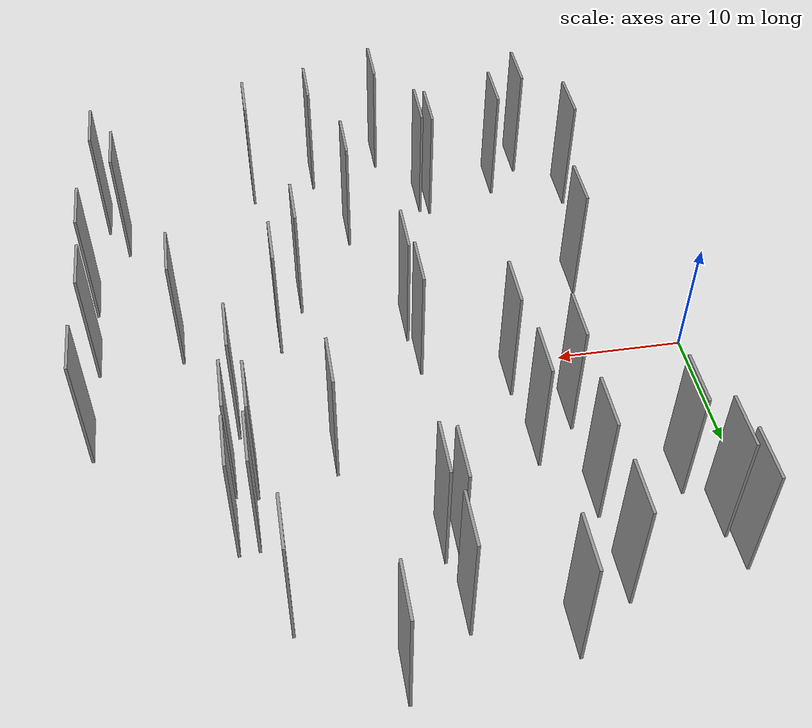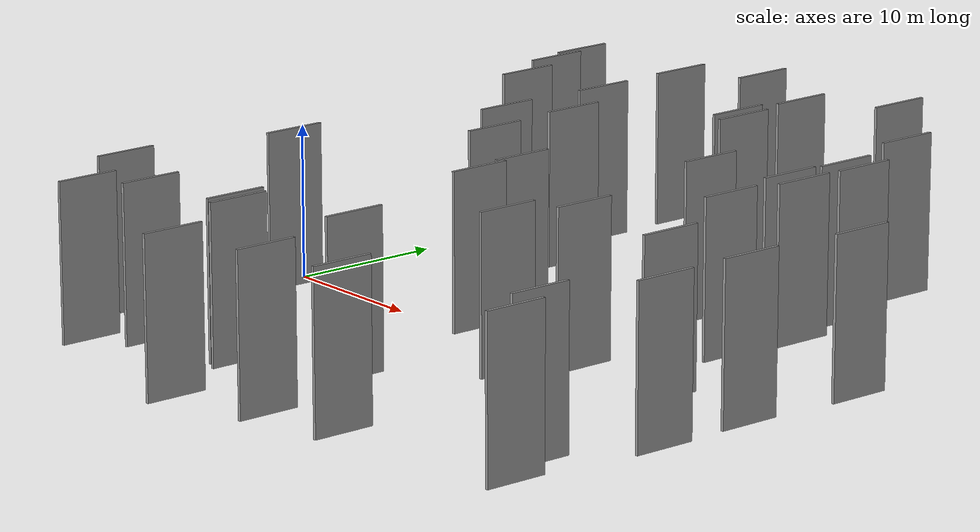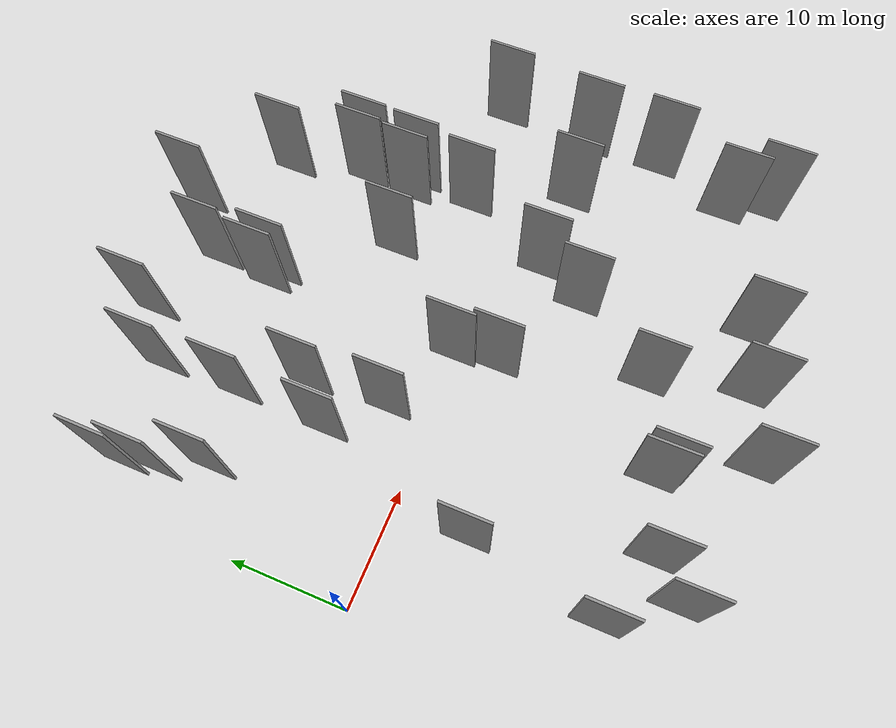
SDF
<sdf version="1.6">
 <world name="default">
  <scene>
   <sky><clouds><speed>12</speed></clouds></sky>
   <ambient>0.4 0.4 0.4 1</ambient>
   <background>0.7 0.7 0.7 1</background>
   <shadows>1</shadows>
  </scene>
  <gravity>0 0 -9.8066</gravity>
  <magnetic_field>6e-06 2.3e-05 -4.2e-05</magnetic_field>
  <physics default="0" name="default_physics" type="ode">
   <ode>
    <solver>
     <type>quick</type>
     <iters>10</iters>
     <sor>1.0</sor>
     <use_dynamic_moi_rescaling>0</use_dynamic_moi_rescaling>
    </solver>
    <constraints>
     <cfm>0</cfm>
     <erp>0.2</erp>
     <contact_max_correcting_vel>100</contact_max_correcting_vel>
     <contact_surface_layer>0.001</contact_surface_layer>
    </constraints>
   </ode>
   <max_step_size>0.004</max_step_size>
   <real_time_factor>1</real_time_factor>
   <real_time_update_rate>250</real_time_update_rate>
  </physics>
  <light name="sun" type="directional">
   <pose>0 0 10 0 0 0</pose>
   <diffuse>0.8 0.8 0.8 1</diffuse>
   <specular>0.2 0.2 0.2 1</specular>
   <attenuation>
    <range>1000</range>
    <constant>0.9</constant>
    <linear>0.01</linear>
    <quadratic>0.001</quadratic>
   </attenuation>
   <direction>-0.5 0.1 -0.9</direction>
  </light>
  <model name="grey_wall_1">
   <static>1</static>
   <pose>43.2385 -16.6148 2.5 0.000000 0.000000 1.570796</pose>
   <link name="link">
    <pose>0 0 5.00 0 0 0</pose>
    <collision name="collision"><geometry><box><size>4.00 0.2 10.00</size></box></geometry></collision>
    <visual name="visual">
     <cast_shadows>0</cast_shadows>
     <geometry><box><size>4.00 0.2 10.00</size></box></geometry>
     <material>
      <script>
       <uri>model://grey_wall/materials/scripts</uri>
       <uri>model://grey_wall/materials/textures</uri>
       <name>vrc/grey_wall</name>
      </script>
     </material>
    </visual>
   </link>
  </model>
  <model name="grey_wall_2">
   <static>1</static>
   <pose>21.4742 0.1918 2.5 0.000000 0.000000 1.570796</pose>
   <link name="link">
    <pose>0 0 5.00 0 0 0</pose>
    <collision name="collision"><geometry><box><size>4.00 0.2 10.00</size></box></geometry></collision>
    <visual name="visual">
     <cast_shadows>0</cast_shadows>
     <geometry><box><size>4.00 0.2 10.00</size></box></geometry>
     <material>
      <script>
       <uri>model://grey_wall/materials/scripts</uri>
       <uri>model://grey_wall/materials/textures</uri>
       <name>vrc/grey_wall</name>
      </script>
     </material>
    </visual>
   </link>
  </model>
  <model name="grey_wall_3">
   <static>1</static>
   <pose>11.6124 7.1430 2.5 0.000000 0.000000 1.570796</pose>
   <link name="link">
    <pose>0 0 5.00 0 0 0</pose>
    <collision name="collision"><geometry><box><size>4.00 0.2 10.00</size></box></geometry></collision>
    <visual name="visual">
     <cast_shadows>0</cast_shadows>
     <geometry><box><size>4.00 0.2 10.00</size></box></geometry>
     <material>
      <script>
       <uri>model://grey_wall/materials/scripts</uri>
       <uri>model://grey_wall/materials/textures</uri>
       <name>vrc/grey_wall</name>
      </script>
     </material>
    </visual>
   </link>
  </model>
  <model name="grey_wall_4">
   <static>1</static>
   <pose>3.8051 17.7990 2.5 0.000000 0.000000 1.570796</pose>
   <link name="link">
    <pose>0 0 5.00 0 0 0</pose>
    <collision name="collision"><geometry><box><size>4.00 0.2 10.00</size></box></geometry></collision>
    <visual name="visual">
     <cast_shadows>0</cast_shadows>
     <geometry><box><size>4.00 0.2 10.00</size></box></geometry>
     <material>
      <script>
       <uri>model://grey_wall/materials/scripts</uri>
       <uri>model://grey_wall/materials/textures</uri>
       <name>vrc/grey_wall</name>
      </script>
     </material>
    </visual>
   </link>
  </model>
  <model name="grey_wall_5">
   <static>1</static>
   <pose>17.5245 -18.0803 2.5 0.000000 0.000000 1.570796</pose>
   <link name="link">
    <pose>0 0 5.00 0 0 0</pose>
    <collision name="collision"><geometry><box><size>4.00 0.2 10.00</size></box></geometry></collision>
    <visual name="visual">
     <cast_shadows>0</cast_shadows>
     <geometry><box><size>4.00 0.2 10.00</size></box></geometry>
     <material>
      <script>
       <uri>model://grey_wall/materials/scripts</uri>
       <uri>model://grey_wall/materials/textures</uri>
       <name>vrc/grey_wall</name>
      </script>
     </material>
    </visual>
   </link>
  </model>
  <model name="grey_wall_6">
   <static>1</static>
   <pose>14.7290 9.9586 2.5 0.000000 0.000000 1.570796</pose>
   <link name="link">
    <pose>0 0 5.00 0 0 0</pose>
    <collision name="collision"><geometry><box><size>4.00 0.2 10.00</size></box></geometry></collision>
    <visual name="visual">
     <cast_shadows>0</cast_shadows>
     <geometry><box><size>4.00 0.2 10.00</size></box></geometry>
     <material>
      <script>
       <uri>model://grey_wall/materials/scripts</uri>
       <uri>model://grey_wall/materials/textures</uri>
       <name>vrc/grey_wall</name>
      </script>
     </material>
    </visual>
   </link>
  </model>
  <model name="grey_wall_7">
   <static>1</static>
   <pose>22.2468 22.2439 2.5 0.000000 0.000000 1.570796</pose>
   <link name="link">
    <pose>0 0 5.00 0 0 0</pose>
    <collision name="collision"><geometry><box><size>4.00 0.2 10.00</size></box></geometry></collision>
    <visual name="visual">
     <cast_shadows>0</cast_shadows>
     <geometry><box><size>4.00 0.2 10.00</size></box></geometry>
     <material>
      <script>
       <uri>model://grey_wall/materials/scripts</uri>
       <uri>model://grey_wall/materials/textures</uri>
       <name>vrc/grey_wall</name>
      </script>
     </material>
    </visual>
   </link>
  </model>
  <model name="grey_wall_8">
   <static>1</static>
   <pose>15.1997 3.2499 2.5 0.000000 0.000000 1.570796</pose>
   <link name="link">
    <pose>0 0 5.00 0 0 0</pose>
    <collision name="collision"><geometry><box><size>4.00 0.2 10.00</size></box></geometry></collision>
    <visual name="visual">
     <cast_shadows>0</cast_shadows>
     <geometry><box><size>4.00 0.2 10.00</size></box></geometry>
     <material>
      <script>
       <uri>model://grey_wall/materials/scripts</uri>
       <uri>model://grey_wall/materials/textures</uri>
       <name>vrc/grey_wall</name>
      </script>
     </material>
    </visual>
   </link>
  </model>
  <model name="grey_wall_9">
   <static>1</static>
   <pose>15.8078 24.9222 2.5 0.000000 0.000000 1.570796</pose>
   <link name="link">
    <pose>0 0 5.00 0 0 0</pose>
    <collision name="collision"><geometry><box><size>4.00 0.2 10.00</size></box></geometry></collision>
    <visual name="visual">
     <cast_shadows>0</cast_shadows>
     <geometry><box><size>4.00 0.2 10.00</size></box></geometry>
     <material>
      <script>
       <uri>model://grey_wall/materials/scripts</uri>
       <uri>model://grey_wall/materials/textures</uri>
       <name>vrc/grey_wall</name>
      </script>
     </material>
    </visual>
   </link>
  </model>
  <model name="grey_wall_10">
   <static>1</static>
   <pose>35.5209 4.2593 2.5 0.000000 0.000000 1.570796</pose>
   <link name="link">
    <pose>0 0 5.00 0 0 0</pose>
    <collision name="collision"><geometry><box><size>4.00 0.2 10.00</size></box></geometry></collision>
    <visual name="visual">
     <cast_shadows>0</cast_shadows>
     <geometry><box><size>4.00 0.2 10.00</size></box></geometry>
     <material>
      <script>
       <uri>model://grey_wall/materials/scripts</uri>
       <uri>model://grey_wall/materials/textures</uri>
       <name>vrc/grey_wall</name>
      </script>
     </material>
    </visual>
   </link>
  </model>
  <model name="grey_wall_11">
   <static>1</static>
   <pose>21.7479 17.3656 2.5 0.000000 0.000000 1.570796</pose>
   <link name="link">
    <pose>0 0 5.00 0 0 0</pose>
    <collision name="collision"><geometry><box><size>4.00 0.2 10.00</size></box></geometry></collision>
    <visual name="visual">
     <cast_shadows>0</cast_shadows>
     <geometry><box><size>4.00 0.2 10.00</size></box></geometry>
     <material>
      <script>
       <uri>model://grey_wall/materials/scripts</uri>
       <uri>model://grey_wall/materials/textures</uri>
       <name>vrc/grey_wall</name>
      </script>
     </material>
    </visual>
   </link>
  </model>
  <model name="grey_wall_12">
   <static>1</static>
   <pose>29.7383 -7.7448 2.5 0.000000 0.000000 1.570796</pose>
   <link name="link">
    <pose>0 0 5.00 0 0 0</pose>
    <collision name="collision"><geometry><box><size>4.00 0.2 10.00</size></box></geometry></collision>
    <visual name="visual">
     <cast_shadows>0</cast_shadows>
     <geometry><box><size>4.00 0.2 10.00</size></box></geometry>
     <material>
      <script>
       <uri>model://grey_wall/materials/scripts</uri>
       <uri>model://grey_wall/materials/textures</uri>
       <name>vrc/grey_wall</name>
      </script>
     </material>
    </visual>
   </link>
  </model>
  <model name="grey_wall_13">
   <static>1</static>
   <pose>5.5190 13.9306 2.5 0.000000 0.000000 1.570796</pose>
   <link name="link">
    <pose>0 0 5.00 0 0 0</pose>
    <collision name="collision"><geometry><box><size>4.00 0.2 10.00</size></box></geometry></collision>
    <visual name="visual">
     <cast_shadows>0</cast_shadows>
     <geometry><box><size>4.00 0.2 10.00</size></box></geometry>
     <material>
      <script>
       <uri>model://grey_wall/materials/scripts</uri>
       <uri>model://grey_wall/materials/textures</uri>
       <name>vrc/grey_wall</name>
      </script>
     </material>
    </visual>
   </link>
  </model>
  <model name="grey_wall_14">
   <static>1</static>
   <pose>45.9590 4.7198 2.5 0.000000 0.000000 1.570796</pose>
   <link name="link">
    <pose>0 0 5.00 0 0 0</pose>
    <collision name="collision"><geometry><box><size>4.00 0.2 10.00</size></box></geometry></collision>
    <visual name="visual">
     <cast_shadows>0</cast_shadows>
     <geometry><box><size>4.00 0.2 10.00</size></box></geometry>
     <material>
      <script>
       <uri>model://grey_wall/materials/scripts</uri>
       <uri>model://grey_wall/materials/textures</uri>
       <name>vrc/grey_wall</name>
      </script>
     </material>
    </visual>
   </link>
  </model>
  <model name="grey_wall_15">
   <static>1</static>
   <pose>11.7948 14.9280 2.5 0.000000 0.000000 1.570796</pose>
   <link name="link">
    <pose>0 0 5.00 0 0 0</pose>
    <collision name="collision"><geometry><box><size>4.00 0.2 10.00</size></box></geometry></collision>
    <visual name="visual">
     <cast_shadows>0</cast_shadows>
     <geometry><box><size>4.00 0.2 10.00</size></box></geometry>
     <material>
      <script>
       <uri>model://grey_wall/materials/scripts</uri>
       <uri>model://grey_wall/materials/textures</uri>
       <name>vrc/grey_wall</name>
      </script>
     </material>
    </visual>
   </link>
  </model>
  <model name="grey_wall_16">
   <static>1</static>
   <pose>45.7403 -9.8213 2.5 0.000000 0.000000 1.570796</pose>
   <link name="link">
    <pose>0 0 5.00 0 0 0</pose>
    <collision name="collision"><geometry><box><size>4.00 0.2 10.00</size></box></geometry></collision>
    <visual name="visual">
     <cast_shadows>0</cast_shadows>
     <geometry><box><size>4.00 0.2 10.00</size></box></geometry>
     <material>
      <script>
       <uri>model://grey_wall/materials/scripts</uri>
       <uri>model://grey_wall/materials/textures</uri>
       <name>vrc/grey_wall</name>
      </script>
     </material>
    </visual>
   </link>
  </model>
  <model name="grey_wall_17">
   <static>1</static>
   <pose>34.8462 14.0735 2.5 0.000000 0.000000 1.570796</pose>
   <link name="link">
    <pose>0 0 5.00 0 0 0</pose>
    <collision name="collision"><geometry><box><size>4.00 0.2 10.00</size></box></geometry></collision>
    <visual name="visual">
     <cast_shadows>0</cast_shadows>
     <geometry><box><size>4.00 0.2 10.00</size></box></geometry>
     <material>
      <script>
       <uri>model://grey_wall/materials/scripts</uri>
       <uri>model://grey_wall/materials/textures</uri>
       <name>vrc/grey_wall</name>
      </script>
     </material>
    </visual>
   </link>
  </model>
  <model name="grey_wall_18">
   <static>1</static>
   <pose>34.6145 9.7718 2.5 0.000000 0.000000 1.570796</pose>
   <link name="link">
    <pose>0 0 5.00 0 0 0</pose>
    <collision name="collision"><geometry><box><size>4.00 0.2 10.00</size></box></geometry></collision>
    <visual name="visual">
     <cast_shadows>0</cast_shadows>
     <geometry><box><size>4.00 0.2 10.00</size></box></geometry>
     <material>
      <script>
       <uri>model://grey_wall/materials/scripts</uri>
       <uri>model://grey_wall/materials/textures</uri>
       <name>vrc/grey_wall</name>
      </script>
     </material>
    </visual>
   </link>
  </model>
  <model name="grey_wall_19">
   <static>1</static>
   <pose>45.5823 -3.3655 2.5 0.000000 0.000000 1.570796</pose>
   <link name="link">
    <pose>0 0 5.00 0 0 0</pose>
    <collision name="collision"><geometry><box><size>4.00 0.2 10.00</size></box></geometry></collision>
    <visual name="visual">
     <cast_shadows>0</cast_shadows>
     <geometry><box><size>4.00 0.2 10.00</size></box></geometry>
     <material>
      <script>
       <uri>model://grey_wall/materials/scripts</uri>
       <uri>model://grey_wall/materials/textures</uri>
       <name>vrc/grey_wall</name>
      </script>
     </material>
    </visual>
   </link>
  </model>
  <model name="grey_wall_20">
   <static>1</static>
   <pose>33.2724 20.6800 2.5 0.000000 0.000000 1.570796</pose>
   <link name="link">
    <pose>0 0 5.00 0 0 0</pose>
    <collision name="collision"><geometry><box><size>4.00 0.2 10.00</size></box></geometry></collision>
    <visual name="visual">
     <cast_shadows>0</cast_shadows>
     <geometry><box><size>4.00 0.2 10.00</size></box></geometry>
     <material>
      <script>
       <uri>model://grey_wall/materials/scripts</uri>
       <uri>model://grey_wall/materials/textures</uri>
       <name>vrc/grey_wall</name>
      </script>
     </material>
    </visual>
   </link>
  </model>
  <model name="grey_wall_21">
   <static>1</static>
   <pose>5.7601 -17.5686 2.5 0.000000 0.000000 1.570796</pose>
   <link name="link">
    <pose>0 0 5.00 0 0 0</pose>
    <collision name="collision"><geometry><box><size>4.00 0.2 10.00</size></box></geometry></collision>
    <visual name="visual">
     <cast_shadows>0</cast_shadows>
     <geometry><box><size>4.00 0.2 10.00</size></box></geometry>
     <material>
      <script>
       <uri>model://grey_wall/materials/scripts</uri>
       <uri>model://grey_wall/materials/textures</uri>
       <name>vrc/grey_wall</name>
      </script>
     </material>
    </visual>
   </link>
  </model>
  <model name="grey_wall_22">
   <static>1</static>
   <pose>3.2390 20.4464 2.5 0.000000 0.000000 1.570796</pose>
   <link name="link">
    <pose>0 0 5.00 0 0 0</pose>
    <collision name="collision"><geometry><box><size>4.00 0.2 10.00</size></box></geometry></collision>
    <visual name="visual">
     <cast_shadows>0</cast_shadows>
     <geometry><box><size>4.00 0.2 10.00</size></box></geometry>
     <material>
      <script>
       <uri>model://grey_wall/materials/scripts</uri>
       <uri>model://grey_wall/materials/textures</uri>
       <name>vrc/grey_wall</name>
      </script>
     </material>
    </visual>
   </link>
  </model>
  <model name="grey_wall_23">
   <static>1</static>
   <pose>27.1002 -22.9911 2.5 0.000000 0.000000 1.570796</pose>
   <link name="link">
    <pose>0 0 5.00 0 0 0</pose>
    <collision name="collision"><geometry><box><size>4.00 0.2 10.00</size></box></geometry></collision>
    <visual name="visual">
     <cast_shadows>0</cast_shadows>
     <geometry><box><size>4.00 0.2 10.00</size></box></geometry>
     <material>
      <script>
       <uri>model://grey_wall/materials/scripts</uri>
       <uri>model://grey_wall/materials/textures</uri>
       <name>vrc/grey_wall</name>
      </script>
     </material>
    </visual>
   </link>
  </model>
  <model name="grey_wall_24">
   <static>1</static>
   <pose>21.2344 -25.1447 2.5 0.000000 0.000000 1.570796</pose>
   <link name="link">
    <pose>0 0 5.00 0 0 0</pose>
    <collision name="collision"><geometry><box><size>4.00 0.2 10.00</size></box></geometry></collision>
    <visual name="visual">
     <cast_shadows>0</cast_shadows>
     <geometry><box><size>4.00 0.2 10.00</size></box></geometry>
     <material>
      <script>
       <uri>model://grey_wall/materials/scripts</uri>
       <uri>model://grey_wall/materials/textures</uri>
       <name>vrc/grey_wall</name>
      </script>
     </material>
    </visual>
   </link>
  </model>
  <model name="grey_wall_25">
   <static>1</static>
   <pose>11.6593 -19.9149 2.5 0.000000 0.000000 1.570796</pose>
   <link name="link">
    <pose>0 0 5.00 0 0 0</pose>
    <collision name="collision"><geometry><box><size>4.00 0.2 10.00</size></box></geometry></collision>
    <visual name="visual">
     <cast_shadows>0</cast_shadows>
     <geometry><box><size>4.00 0.2 10.00</size></box></geometry>
     <material>
      <script>
       <uri>model://grey_wall/materials/scripts</uri>
       <uri>model://grey_wall/materials/textures</uri>
       <name>vrc/grey_wall</name>
      </script>
     </material>
    </visual>
   </link>
  </model>
  <model name="grey_wall_26">
   <static>1</static>
   <pose>22.8054 16.8679 2.5 0.000000 0.000000 1.570796</pose>
   <link name="link">
    <pose>0 0 5.00 0 0 0</pose>
    <collision name="collision"><geometry><box><size>4.00 0.2 10.00</size></box></geometry></collision>
    <visual name="visual">
     <cast_shadows>0</cast_shadows>
     <geometry><box><size>4.00 0.2 10.00</size></box></geometry>
     <material>
      <script>
       <uri>model://grey_wall/materials/scripts</uri>
       <uri>model://grey_wall/materials/textures</uri>
       <name>vrc/grey_wall</name>
      </script>
     </material>
    </visual>
   </link>
  </model>
  <model name="grey_wall_27">
   <static>1</static>
   <pose>7.8023 -6.5216 2.5 0.000000 0.000000 1.570796</pose>
   <link name="link">
    <pose>0 0 5.00 0 0 0</pose>
    <collision name="collision"><geometry><box><size>4.00 0.2 10.00</size></box></geometry></collision>
    <visual name="visual">
     <cast_shadows>0</cast_shadows>
     <geometry><box><size>4.00 0.2 10.00</size></box></geometry>
     <material>
      <script>
       <uri>model://grey_wall/materials/scripts</uri>
       <uri>model://grey_wall/materials/textures</uri>
       <name>vrc/grey_wall</name>
      </script>
     </material>
    </visual>
   </link>
  </model>
  <model name="grey_wall_28">
   <static>1</static>
   <pose>39.2537 -3.7173 2.5 0.000000 0.000000 1.570796</pose>
   <link name="link">
    <pose>0 0 5.00 0 0 0</pose>
    <collision name="collision"><geometry><box><size>4.00 0.2 10.00</size></box></geometry></collision>
    <visual name="visual">
     <cast_shadows>0</cast_shadows>
     <geometry><box><size>4.00 0.2 10.00</size></box></geometry>
     <material>
      <script>
       <uri>model://grey_wall/materials/scripts</uri>
       <uri>model://grey_wall/materials/textures</uri>
       <name>vrc/grey_wall</name>
      </script>
     </material>
    </visual>
   </link>
  </model>
  <model name="grey_wall_29">
   <static>1</static>
   <pose>36.1543 9.4478 2.5 0.000000 0.000000 1.570796</pose>
   <link name="link">
    <pose>0 0 5.00 0 0 0</pose>
    <collision name="collision"><geometry><box><size>4.00 0.2 10.00</size></box></geometry></collision>
    <visual name="visual">
     <cast_shadows>0</cast_shadows>
     <geometry><box><size>4.00 0.2 10.00</size></box></geometry>
     <material>
      <script>
       <uri>model://grey_wall/materials/scripts</uri>
       <uri>model://grey_wall/materials/textures</uri>
       <name>vrc/grey_wall</name>
      </script>
     </material>
    </visual>
   </link>
  </model>
  <model name="grey_wall_30">
   <static>1</static>
   <pose>9.0304 -22.5887 2.5 0.000000 0.000000 1.570796</pose>
   <link name="link">
    <pose>0 0 5.00 0 0 0</pose>
    <collision name="collision"><geometry><box><size>4.00 0.2 10.00</size></box></geometry></collision>
    <visual name="visual">
     <cast_shadows>0</cast_shadows>
     <geometry><box><size>4.00 0.2 10.00</size></box></geometry>
     <material>
      <script>
       <uri>model://grey_wall/materials/scripts</uri>
       <uri>model://grey_wall/materials/textures</uri>
       <name>vrc/grey_wall</name>
      </script>
     </material>
    </visual>
   </link>
  </model>
  <model name="grey_wall_31">
   <static>1</static>
   <pose>44.8850 -19.6930 2.5 0.000000 0.000000 1.570796</pose>
   <link name="link">
    <pose>0 0 5.00 0 0 0</pose>
    <collision name="collision"><geometry><box><size>4.00 0.2 10.00</size></box></geometry></collision>
    <visual name="visual">
     <cast_shadows>0</cast_shadows>
     <geometry><box><size>4.00 0.2 10.00</size></box></geometry>
     <material>
      <script>
       <uri>model://grey_wall/materials/scripts</uri>
       <uri>model://grey_wall/materials/textures</uri>
       <name>vrc/grey_wall</name>
      </script>
     </material>
    </visual>
   </link>
  </model>
  <model name="grey_wall_32">
   <static>1</static>
   <pose>18.3142 -18.4697 2.5 0.000000 0.000000 1.570796</pose>
   <link name="link">
    <pose>0 0 5.00 0 0 0</pose>
    <collision name="collision"><geometry><box><size>4.00 0.2 10.00</size></box></geometry></collision>
    <visual name="visual">
     <cast_shadows>0</cast_shadows>
     <geometry><box><size>4.00 0.2 10.00</size></box></geometry>
     <material>
      <script>
       <uri>model://grey_wall/materials/scripts</uri>
       <uri>model://grey_wall/materials/textures</uri>
       <name>vrc/grey_wall</name>
      </script>
     </material>
    </visual>
   </link>
  </model>
  <model name="grey_wall_33">
   <static>1</static>
   <pose>36.2570 14.2014 2.5 0.000000 0.000000 1.570796</pose>
   <link name="link">
    <pose>0 0 5.00 0 0 0</pose>
    <collision name="collision"><geometry><box><size>4.00 0.2 10.00</size></box></geometry></collision>
    <visual name="visual">
     <cast_shadows>0</cast_shadows>
     <geometry><box><size>4.00 0.2 10.00</size></box></geometry>
     <material>
      <script>
       <uri>model://grey_wall/materials/scripts</uri>
       <uri>model://grey_wall/materials/textures</uri>
       <name>vrc/grey_wall</name>
      </script>
     </material>
    </visual>
   </link>
  </model>
  <model name="grey_wall_34">
   <static>1</static>
   <pose>11.6358 21.6472 2.5 0.000000 0.000000 1.570796</pose>
   <link name="link">
    <pose>0 0 5.00 0 0 0</pose>
    <collision name="collision"><geometry><box><size>4.00 0.2 10.00</size></box></geometry></collision>
    <visual name="visual">
     <cast_shadows>0</cast_shadows>
     <geometry><box><size>4.00 0.2 10.00</size></box></geometry>
     <material>
      <script>
       <uri>model://grey_wall/materials/scripts</uri>
       <uri>model://grey_wall/materials/textures</uri>
       <name>vrc/grey_wall</name>
      </script>
     </material>
    </visual>
   </link>
  </model>
  <model name="grey_wall_35">
   <static>1</static>
   <pose>21.9230 -3.4317 2.5 0.000000 0.000000 1.570796</pose>
   <link name="link">
    <pose>0 0 5.00 0 0 0</pose>
    <collision name="collision"><geometry><box><size>4.00 0.2 10.00</size></box></geometry></collision>
    <visual name="visual">
     <cast_shadows>0</cast_shadows>
     <geometry><box><size>4.00 0.2 10.00</size></box></geometry>
     <material>
      <script>
       <uri>model://grey_wall/materials/scripts</uri>
       <uri>model://grey_wall/materials/textures</uri>
       <name>vrc/grey_wall</name>
      </script>
     </material>
    </visual>
   </link>
  </model>
  <model name="grey_wall_36">
   <static>1</static>
   <pose>32.4064 -21.7480 2.5 0.000000 0.000000 1.570796</pose>
   <link name="link">
    <pose>0 0 5.00 0 0 0</pose>
    <collision name="collision"><geometry><box><size>4.00 0.2 10.00</size></box></geometry></collision>
    <visual name="visual">
     <cast_shadows>0</cast_shadows>
     <geometry><box><size>4.00 0.2 10.00</size></box></geometry>
     <material>
      <script>
       <uri>model://grey_wall/materials/scripts</uri>
       <uri>model://grey_wall/materials/textures</uri>
       <name>vrc/grey_wall</name>
      </script>
     </material>
    </visual>
   </link>
  </model>
  <model name="grey_wall_37">
   <static>1</static>
   <pose>26.8143 26.3246 2.5 0.000000 0.000000 1.570796</pose>
   <link name="link">
    <pose>0 0 5.00 0 0 0</pose>
    <collision name="collision"><geometry><box><size>4.00 0.2 10.00</size></box></geometry></collision>
    <visual name="visual">
     <cast_shadows>0</cast_shadows>
     <geometry><box><size>4.00 0.2 10.00</size></box></geometry>
     <material>
      <script>
       <uri>model://grey_wall/materials/scripts</uri>
       <uri>model://grey_wall/materials/textures</uri>
       <name>vrc/grey_wall</name>
      </script>
     </material>
    </visual>
   </link>
  </model>
  <model name="grey_wall_38">
   <static>1</static>
   <pose>28.9399 8.6210 2.5 0.000000 0.000000 1.570796</pose>
   <link name="link">
    <pose>0 0 5.00 0 0 0</pose>
    <collision name="collision"><geometry><box><size>4.00 0.2 10.00</size></box></geometry></collision>
    <visual name="visual">
     <cast_shadows>0</cast_shadows>
     <geometry><box><size>4.00 0.2 10.00</size></box></geometry>
     <material>
      <script>
       <uri>model://grey_wall/materials/scripts</uri>
       <uri>model://grey_wall/materials/textures</uri>
       <name>vrc/grey_wall</name>
      </script>
     </material>
    </visual>
   </link>
  </model>
  <model name="grey_wall_39">
   <static>1</static>
   <pose>31.7501 -3.6896 2.5 0.000000 0.000000 1.570796</pose>
   <link name="link">
    <pose>0 0 5.00 0 0 0</pose>
    <collision name="collision"><geometry><box><size>4.00 0.2 10.00</size></box></geometry></collision>
    <visual name="visual">
     <cast_shadows>0</cast_shadows>
     <geometry><box><size>4.00 0.2 10.00</size></box></geometry>
     <material>
      <script>
       <uri>model://grey_wall/materials/scripts</uri>
       <uri>model://grey_wall/materials/textures</uri>
       <name>vrc/grey_wall</name>
      </script>
     </material>
    </visual>
   </link>
  </model>
  <model name="grey_wall_40">
   <static>1</static>
   <pose>24.9299 -15.1212 2.5 0.000000 0.000000 1.570796</pose>
   <link name="link">
    <pose>0 0 5.00 0 0 0</pose>
    <collision name="collision"><geometry><box><size>4.00 0.2 10.00</size></box></geometry></collision>
    <visual name="visual">
     <cast_shadows>0</cast_shadows>
     <geometry><box><size>4.00 0.2 10.00</size></box></geometry>
     <material>
      <script>
       <uri>model://grey_wall/materials/scripts</uri>
       <uri>model://grey_wall/materials/textures</uri>
       <name>vrc/grey_wall</name>
      </script>
     </material>
    </visual>
   </link>
  </model>
 </world>
</sdf>
